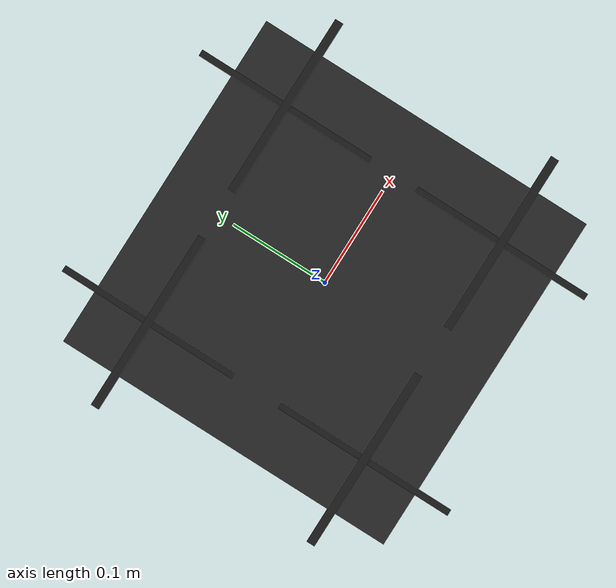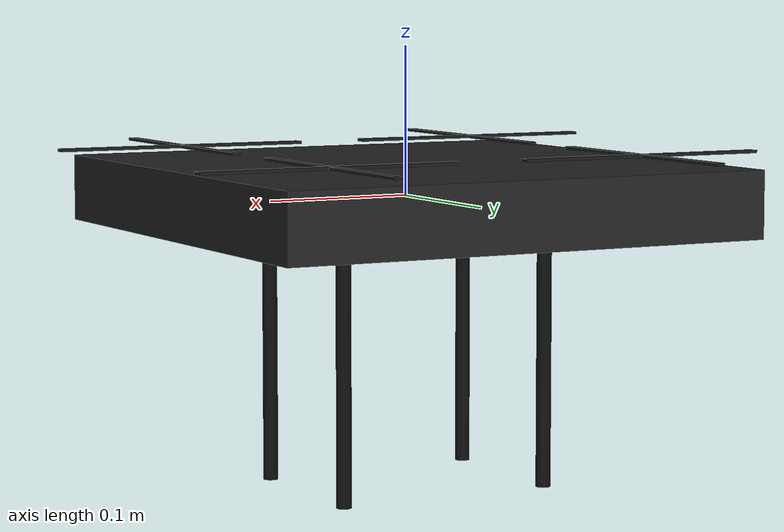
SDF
<?xml version='1.0'?>
<sdf version='1.9'>
	<model name="rescue_7inch">
  <!-- Model-level flag is required for included-model links to receive wind. -->
  <enable_wind>true</enable_wind>
  <self_collide>false</self_collide>
    <pose>0 0 0 0 0 0</pose>
    <link name='base_link'>
      <!-- Required for Gazebo WindEffects to apply physical wind force. -->
      <enable_wind>true</enable_wind>
      <velocity_decay>
        <linear>0.0</linear>
        <angular>0.0</angular>
      </velocity_decay>
      <inertial>
        <pose>0 0 0 0 0 0</pose>
        <mass>1.33</mass>
        <inertia>
          <ixx>0.020</ixx>
          <ixy>0</ixy>
          <ixz>0</ixz>
          <iyy>0.020</iyy>
          <iyz>0</iyz>
          <izz>0.035</izz>
        </inertia>
      </inertial>
<!-- Downward RGB camera -->
      <sensor name="down_camera" type="camera">
        <pose>0 0 -0.10 0 1.5708 0</pose>
        <gz_frame_id>base_link</gz_frame_id>
        <camera>
          <horizontal_fov>1.5708</horizontal_fov>
          <image>
            <width>640</width>
            <height>480</height>
            <format>RGB_INT8</format>
          </image>
          <clip>
            <near>0.05</near>
            <far>500</far>
          </clip>
        </camera>
        <always_on>1</always_on>
        <update_rate>20</update_rate>
        <visualize>false</visualize>
      </sensor>

      <collision name='base_collision'>
        <pose>0 0 0 0 0 0</pose>
        <geometry>
          <box>
            <size>0.18 0.14 0.045</size>
          </box>
        </geometry>
        <surface>
          <contact>
            <ode>
              <max_vel>100.0</max_vel>
              <min_depth>0.001</min_depth>
            </ode>
          </contact>
          <friction>
            <ode>
              <mu>1.0</mu>
              <mu2>1.0</mu2>
            </ode>
          </friction>
        </surface>
      </collision>
      <collision name='front_left_leg_collision'>
        <pose>0.075 0.055 -0.11 0 0 0</pose>
        <geometry>
          <cylinder>
            <radius>0.005</radius>
            <length>0.17</length>
          </cylinder>
        </geometry>
        <surface>
          <contact>
            <ode>
              <max_vel>100.0</max_vel>
              <min_depth>0.001</min_depth>
            </ode>
          </contact>
          <friction>
            <ode>
              <mu>100000.0</mu>
              <mu2>100000.0</mu2>
            </ode>
          </friction>
        </surface>
      </collision>
      <collision name='front_right_leg_collision'>
        <pose>0.075 -0.055 -0.11 0 0 0</pose>
        <geometry>
          <cylinder>
            <radius>0.005</radius>
            <length>0.17</length>
          </cylinder>
        </geometry>
        <surface>
          <contact>
            <ode>
              <max_vel>100.0</max_vel>
              <min_depth>0.001</min_depth>
            </ode>
          </contact>
          <friction>
            <ode>
              <mu>100000.0</mu>
              <mu2>100000.0</mu2>
            </ode>
          </friction>
        </surface>
      </collision>
      <collision name='rear_left_leg_collision'>
        <pose>-0.075 0.055 -0.11 0 0 0</pose>
        <geometry>
          <cylinder>
            <radius>0.005</radius>
            <length>0.17</length>
          </cylinder>
        </geometry>
        <surface>
          <contact>
            <ode>
              <max_vel>100.0</max_vel>
              <min_depth>0.001</min_depth>
            </ode>
          </contact>
          <friction>
            <ode>
              <mu>100000.0</mu>
              <mu2>100000.0</mu2>
            </ode>
          </friction>
        </surface>
      </collision>
      <collision name='rear_right_leg_collision'>
        <pose>-0.075 -0.055 -0.11 0 0 0</pose>
        <geometry>
          <cylinder>
            <radius>0.005</radius>
            <length>0.17</length>
          </cylinder>
        </geometry>
        <surface>
          <contact>
            <ode>
              <max_vel>100.0</max_vel>
              <min_depth>0.001</min_depth>
            </ode>
          </contact>
          <friction>
            <ode>
              <mu>100000.0</mu>
              <mu2>100000.0</mu2>
            </ode>
          </friction>
        </surface>
      </collision>

      <visual name='base_visual'>
        <pose>0 0 0 0 0 0</pose>
        <geometry>
          <box>
            <size>0.34 0.34 0.045</size>
          </box>
        </geometry>
        <material>
          <ambient>0.08 0.08 0.08 1</ambient>
          <diffuse>0.14 0.14 0.14 1</diffuse>
          <specular>0.20 0.20 0.20 1</specular>
          <pbr>
            <metal>
              <metalness>0.35</metalness>
              <roughness>0.55</roughness>
            </metal>
          </pbr>
        </material>
      </visual>
      <visual name='front_left_leg_visual'>
        <pose>0.075 0.055 -0.11 0 0 0</pose>
        <geometry>
          <cylinder>
            <radius>0.005</radius>
            <length>0.17</length>
          </cylinder>
        </geometry>
        <material>
          <ambient>0.05 0.05 0.05</ambient>
          <diffuse>0.05 0.05 0.05</diffuse>
          <specular>0.01 0.01 0.01 1.0</specular>
          <pbr>
            <metal>
              <metalness>0.5</metalness>
              <roughness>0.5</roughness>
            </metal>
          </pbr>
        </material>
      </visual>
      <visual name='front_right_leg_visual'>
        <pose>0.075 -0.055 -0.11 0 0 0</pose>
        <geometry>
          <cylinder>
            <radius>0.005</radius>
            <length>0.17</length>
          </cylinder>
        </geometry>
        <material>
          <ambient>0.05 0.05 0.05</ambient>
          <diffuse>0.05 0.05 0.05</diffuse>
          <specular>0.01 0.01 0.01 1.0</specular>
          <pbr>
            <metal>
              <metalness>0.5</metalness>
              <roughness>0.5</roughness>
            </metal>
          </pbr>
        </material>
      </visual>
      <visual name='rear_left_leg_visual'>
        <pose>-0.075 0.055 -0.11 0 0 0</pose>
        <geometry>
          <cylinder>
            <radius>0.005</radius>
            <length>0.17</length>
          </cylinder>
        </geometry>
        <material>
          <ambient>0.05 0.05 0.05</ambient>
          <diffuse>0.05 0.05 0.05</diffuse>
          <specular>0.01 0.01 0.01 1.0</specular>
          <pbr>
            <metal>
              <metalness>0.5</metalness>
              <roughness>0.5</roughness>
            </metal>
          </pbr>
        </material>
      </visual>
      <visual name='rear_right_leg_visual'>
        <pose>-0.075 -0.055 -0.11 0 0 0</pose>
        <geometry>
          <cylinder>
            <radius>0.005</radius>
            <length>0.17</length>
          </cylinder>
        </geometry>
        <material>
          <ambient>0.05 0.05 0.05</ambient>
          <diffuse>0.05 0.05 0.05</diffuse>
          <specular>0.01 0.01 0.01 1.0</specular>
          <pbr>
            <metal>
              <metalness>0.5</metalness>
              <roughness>0.5</roughness>
            </metal>
          </pbr>
        </material>
      </visual>
    </link>
    <link name='imu_link'>
      <inertial>
        <pose>0 0 0 0 0 0</pose>
        <mass>0.010</mass>
        <inertia>
          <ixx>0.00001</ixx>
          <ixy>0</ixy>
          <ixz>0</ixz>
          <iyy>0.00002</iyy>
          <iyz>0</iyz>
          <izz>0.00002</izz>
        </inertia>
      </inertial>
      <sensor name="imu_sensor" type="imu">
        <gz_frame_id>imu_link</gz_frame_id>
        <pose degrees="true">0 0 0 180 0 0</pose>
        <always_on>1</always_on>
        <update_rate>1000.0</update_rate>
      </sensor>
    </link>
    <joint name='imu_joint' type='revolute'>
      <child>imu_link</child>
      <parent>base_link</parent>
      <axis>
        <xyz>0 0 1</xyz>
        <limit>
          <lower>0</lower>
          <upper>0</upper>
          <effort>0</effort>
          <velocity>0</velocity>
        </limit>
        <dynamics>
          <damping>1.0</damping>
        </dynamics>
      </axis>
    </joint>

    <!-- Sensor-role links represent the BLITZ Mini F745 architecture.
         Their masses are included in the 1.500 kg AUW budget. -->
    <link name='gps_link'>
      <inertial>
        <mass>0.010</mass>
        <inertia><ixx>1e-6</ixx><iyy>1e-6</iyy><izz>1e-6</izz></inertia>
      </inertial>
      <sensor name='gps_sensor' type='navsat'>
        <gz_frame_id>gps_link</gz_frame_id>
        <always_on>1</always_on>
        <update_rate>10</update_rate>
      </sensor>
    </link>
    <joint name='gps_joint' type='fixed'>
      <parent>base_link</parent><child>gps_link</child>
    </joint>

    <link name='barometer_link'>
      <inertial>
        <mass>0.005</mass>
        <inertia><ixx>1e-6</ixx><iyy>1e-6</iyy><izz>1e-6</izz></inertia>
      </inertial>
      <sensor name='barometer_sensor' type='air_pressure'>
        <gz_frame_id>barometer_link</gz_frame_id>
        <always_on>1</always_on>
        <update_rate>50</update_rate>
      </sensor>
    </link>
    <joint name='barometer_joint' type='fixed'>
      <parent>base_link</parent><child>barometer_link</child>
    </joint>

    <link name='compass_link'>
      <inertial>
        <mass>0.005</mass>
        <inertia><ixx>1e-6</ixx><iyy>1e-6</iyy><izz>1e-6</izz></inertia>
      </inertial>
      <sensor name='compass_sensor' type='magnetometer'>
        <gz_frame_id>compass_link</gz_frame_id>
        <always_on>1</always_on>
        <update_rate>100</update_rate>
      </sensor>
    </link>
    <joint name='compass_joint' type='fixed'>
      <parent>base_link</parent><child>compass_link</child>
    </joint>

  <link name='rotor_0'>
    <pose>+0.113137 -0.113137 0.030 0 0 0</pose>

    <inertial>
        <pose>0 0 0 0 0 0</pose>
        <mass>0.035</mass>
        <inertia>
          <ixx>9.75e-06</ixx>
          <ixy>0</ixy>
          <ixz>0</ixz>
          <iyy>0.000166704</iyy>
          <iyz>0</iyz>
          <izz>0.000167604</izz>
        </inertia>
      </inertial>

    <visual name='propeller_visual'>
      <pose>0 0 0 0 0 0</pose>
      <geometry>
        <box>
          <size>0.1778 0.008 0.002</size>
        </box>
      </geometry>
      <material>
        <ambient>0.05 0.05 0.05 1</ambient>
        <diffuse>0.10 0.10 0.10 1</diffuse>
        <specular>0.20 0.20 0.20 1</specular>
      </material>
    </visual>

    <visual name='propeller_visual_90deg'>
      <pose>0 0 0 0 0 1.57079632679</pose>
      <geometry>
        <box>
          <size>0.1778 0.006 0.002</size>
        </box>
      </geometry>
      <material>
        <ambient>0.05 0.05 0.05 1</ambient>
        <diffuse>0.10 0.10 0.10 1</diffuse>
        <specular>0.20 0.20 0.20 1</specular>
      </material>
    </visual>

  </link>
<joint name='rotor_0_joint' type='revolute'>
      <child>rotor_0</child>
      <parent>base_link</parent>
      <axis>
        <xyz>0 0 1</xyz>
        <limit>
          <lower>-1e+16</lower>
          <upper>1e+16</upper>
        </limit>
        <dynamics>
          <damping>0.004</damping>
        </dynamics>
      </axis>
    </joint>

  <link name='rotor_1'>
    <pose>-0.113137 +0.113137 0.030 0 0 0</pose>

    <inertial>
        <pose>0 0 0 0 0 0</pose>
        <mass>0.035</mass>
        <inertia>
          <ixx>9.75e-06</ixx>
          <ixy>0</ixy>
          <ixz>0</ixz>
          <iyy>0.000166704</iyy>
          <iyz>0</iyz>
          <izz>0.000167604</izz>
        </inertia>
      </inertial>

    <visual name='propeller_visual'>
      <pose>0 0 0 0 0 0</pose>
      <geometry>
        <box>
          <size>0.1778 0.008 0.002</size>
        </box>
      </geometry>
      <material>
        <ambient>0.05 0.05 0.05 1</ambient>
        <diffuse>0.10 0.10 0.10 1</diffuse>
        <specular>0.20 0.20 0.20 1</specular>
      </material>
    </visual>

    <visual name='propeller_visual_90deg'>
      <pose>0 0 0 0 0 1.57079632679</pose>
      <geometry>
        <box>
          <size>0.1778 0.006 0.002</size>
        </box>
      </geometry>
      <material>
        <ambient>0.05 0.05 0.05 1</ambient>
        <diffuse>0.10 0.10 0.10 1</diffuse>
        <specular>0.20 0.20 0.20 1</specular>
      </material>
    </visual>

  </link>
<joint name='rotor_1_joint' type='revolute'>
      <child>rotor_1</child>
      <parent>base_link</parent>
      <axis>
        <xyz>0 0 1</xyz>
        <limit>
          <lower>-1e+16</lower>
          <upper>1e+16</upper>
        </limit>
        <dynamics>
          <damping>0.004</damping>
        </dynamics>
      </axis>
    </joint>

  <link name='rotor_2'>
    <pose>+0.113137 +0.113137 0.030 0 0 0</pose>

    <inertial>
        <pose>0 0 0 0 0 0</pose>
        <mass>0.035</mass>
        <inertia>
          <ixx>9.75e-06</ixx>
          <ixy>0</ixy>
          <ixz>0</ixz>
          <iyy>0.000166704</iyy>
          <iyz>0</iyz>
          <izz>0.000167604</izz>
        </inertia>
      </inertial>

    <visual name='propeller_visual'>
      <pose>0 0 0 0 0 0</pose>
      <geometry>
        <box>
          <size>0.1778 0.008 0.002</size>
        </box>
      </geometry>
      <material>
        <ambient>0.05 0.05 0.05 1</ambient>
        <diffuse>0.10 0.10 0.10 1</diffuse>
        <specular>0.20 0.20 0.20 1</specular>
      </material>
    </visual>

    <visual name='propeller_visual_90deg'>
      <pose>0 0 0 0 0 1.57079632679</pose>
      <geometry>
        <box>
          <size>0.1778 0.006 0.002</size>
        </box>
      </geometry>
      <material>
        <ambient>0.05 0.05 0.05 1</ambient>
        <diffuse>0.10 0.10 0.10 1</diffuse>
        <specular>0.20 0.20 0.20 1</specular>
      </material>
    </visual>

  </link>
<joint name='rotor_2_joint' type='revolute'>
      <child>rotor_2</child>
      <parent>base_link</parent>
      <axis>
        <xyz>0 0 1</xyz>
        <limit>
          <lower>-1e+16</lower>
          <upper>1e+16</upper>
        </limit>
        <dynamics>
          <damping>0.004</damping>
        </dynamics>
      </axis>
    </joint>

  <link name='rotor_3'>
    <pose>-0.113137 -0.113137 0.030 0 0 0</pose>

    <inertial>
        <pose>0 0 0 0 0 0</pose>
        <mass>0.035</mass>
        <inertia>
          <ixx>9.75e-06</ixx>
          <ixy>0</ixy>
          <ixz>0</ixz>
          <iyy>0.000166704</iyy>
          <iyz>0</iyz>
          <izz>0.000167604</izz>
        </inertia>
      </inertial>

    <visual name='propeller_visual'>
      <pose>0 0 0 0 0 0</pose>
      <geometry>
        <box>
          <size>0.1778 0.008 0.002</size>
        </box>
      </geometry>
      <material>
        <ambient>0.05 0.05 0.05 1</ambient>
        <diffuse>0.10 0.10 0.10 1</diffuse>
        <specular>0.20 0.20 0.20 1</specular>
      </material>
    </visual>

    <visual name='propeller_visual_90deg'>
      <pose>0 0 0 0 0 1.57079632679</pose>
      <geometry>
        <box>
          <size>0.1778 0.006 0.002</size>
        </box>
      </geometry>
      <material>
        <ambient>0.05 0.05 0.05 1</ambient>
        <diffuse>0.10 0.10 0.10 1</diffuse>
        <specular>0.20 0.20 0.20 1</specular>
      </material>
    </visual>

  </link>
<joint name='rotor_3_joint' type='revolute'>
      <child>rotor_3</child>
      <parent>base_link</parent>
      <axis>
        <xyz>0 0 1</xyz>
        <limit>
          <lower>-1e+16</lower>
          <upper>1e+16</upper>
        </limit>
        <dynamics>
          <damping>0.004</damping>
        </dynamics>
      </axis>
    </joint>

    <!-- First-pass 7-inch propeller aerodynamics. Coefficients are simulation
         assumptions and must be calibrated against measured thrust data. -->
    <plugin filename="gz-sim-lift-drag-system" name="gz::sim::systems::LiftDrag">
      <a0>0.3</a0><alpha_stall>1.4</alpha_stall><cla>4.25</cla><cda>0.10</cda>
      <cla_stall>-0.025</cla_stall><area>0.002</area><air_density>1.2041</air_density>
      <cp>0.084 0 0</cp><forward>0 1 0</forward><upward>0 0 1</upward><link_name>rotor_0</link_name>
    </plugin>
    <plugin filename="gz-sim-lift-drag-system" name="gz::sim::systems::LiftDrag">
      <a0>0.3</a0><alpha_stall>1.4</alpha_stall><cla>4.25</cla><cda>0.10</cda>
      <cla_stall>-0.025</cla_stall><area>0.002</area><air_density>1.2041</air_density>
      <cp>-0.084 0 0</cp><forward>0 -1 0</forward><upward>0 0 1</upward><link_name>rotor_0</link_name>
    </plugin>
    <plugin filename="gz-sim-lift-drag-system" name="gz::sim::systems::LiftDrag">
      <a0>0.3</a0><alpha_stall>1.4</alpha_stall><cla>4.25</cla><cda>0.10</cda>
      <cla_stall>-0.025</cla_stall><area>0.002</area><air_density>1.2041</air_density>
      <cp>0.084 0 0</cp><forward>0 1 0</forward><upward>0 0 1</upward><link_name>rotor_1</link_name>
    </plugin>
    <plugin filename="gz-sim-lift-drag-system" name="gz::sim::systems::LiftDrag">
      <a0>0.3</a0><alpha_stall>1.4</alpha_stall><cla>4.25</cla><cda>0.10</cda>
      <cla_stall>-0.025</cla_stall><area>0.002</area><air_density>1.2041</air_density>
      <cp>-0.084 0 0</cp><forward>0 -1 0</forward><upward>0 0 1</upward><link_name>rotor_1</link_name>
    </plugin>
    <plugin filename="gz-sim-lift-drag-system" name="gz::sim::systems::LiftDrag">
      <a0>0.3</a0><alpha_stall>1.4</alpha_stall><cla>4.25</cla><cda>0.10</cda>
      <cla_stall>-0.025</cla_stall><area>0.002</area><air_density>1.2041</air_density>
      <cp>0.084 0 0</cp><forward>0 -1 0</forward><upward>0 0 1</upward><link_name>rotor_2</link_name>
    </plugin>
    <plugin filename="gz-sim-lift-drag-system" name="gz::sim::systems::LiftDrag">
      <a0>0.3</a0><alpha_stall>1.4</alpha_stall><cla>4.25</cla><cda>0.10</cda>
      <cla_stall>-0.025</cla_stall><area>0.002</area><air_density>1.2041</air_density>
      <cp>-0.084 0 0</cp><forward>0 1 0</forward><upward>0 0 1</upward><link_name>rotor_2</link_name>
    </plugin>
    <plugin filename="gz-sim-lift-drag-system" name="gz::sim::systems::LiftDrag">
      <a0>0.3</a0><alpha_stall>1.4</alpha_stall><cla>4.25</cla><cda>0.10</cda>
      <cla_stall>-0.025</cla_stall><area>0.002</area><air_density>1.2041</air_density>
      <cp>0.084 0 0</cp><forward>0 -1 0</forward><upward>0 0 1</upward><link_name>rotor_3</link_name>
    </plugin>
    <plugin filename="gz-sim-lift-drag-system" name="gz::sim::systems::LiftDrag">
      <a0>0.3</a0><alpha_stall>1.4</alpha_stall><cla>4.25</cla><cda>0.10</cda>
      <cla_stall>-0.025</cla_stall><area>0.002</area><air_density>1.2041</air_density>
      <cp>-0.084 0 0</cp><forward>0 1 0</forward><upward>0 0 1</upward><link_name>rotor_3</link_name>
    </plugin>
    <plugin filename="gz-sim-apply-joint-force-system" name="gz::sim::systems::ApplyJointForce"><joint_name>rotor_0_joint</joint_name></plugin>
    <plugin filename="gz-sim-apply-joint-force-system" name="gz::sim::systems::ApplyJointForce"><joint_name>rotor_1_joint</joint_name></plugin>
    <plugin filename="gz-sim-apply-joint-force-system" name="gz::sim::systems::ApplyJointForce"><joint_name>rotor_2_joint</joint_name></plugin>
    <plugin filename="gz-sim-apply-joint-force-system" name="gz::sim::systems::ApplyJointForce"><joint_name>rotor_3_joint</joint_name></plugin>

    <plugin name="ArduPilotPlugin"
      filename="ArduPilotPlugin">

      <fdm_addr>127.0.0.1</fdm_addr>
      <fdm_port_in>9003</fdm_port_in>

      <connectionTimeoutMaxCount>5</connectionTimeoutMaxCount>
      <lock_step>1</lock_step>
      <no_time_sync>1</no_time_sync>
      <have_32_channels>0</have_32_channels>

      <modelXYZToAirplaneXForwardZDown degrees="true">0 0 0 180 0 0</modelXYZToAirplaneXForwardZDown>
      <gazeboXYZToNED degrees="true">0 0 0 180 0 90</gazeboXYZToNED>

      <imuName>imu_sensor</imuName>

      <control channel="0">
        <jointName>rotor_0_joint</jointName>
        <useForce>1</useForce>
        <multiplier>838</multiplier>
        <offset>0</offset>
        <servo_min>1100</servo_min>
        <servo_max>1900</servo_max>
        <type>VELOCITY</type>
        <p_gain>0.20</p_gain>
        <i_gain>0</i_gain>
        <d_gain>0</d_gain>
        <i_max>0</i_max>
        <i_min>0</i_min>
        <cmd_max>2.5</cmd_max>
        <cmd_min>-2.5</cmd_min>
        <controlVelocitySlowdownSim>1</controlVelocitySlowdownSim>
      </control>

      <control channel="1">
        <jointName>rotor_1_joint</jointName>
        <useForce>1</useForce>
        <multiplier>838</multiplier>
        <offset>0</offset>
        <servo_min>1100</servo_min>
        <servo_max>1900</servo_max>
        <type>VELOCITY</type>
        <p_gain>0.20</p_gain>
        <i_gain>0</i_gain>
        <d_gain>0</d_gain>
        <i_max>0</i_max>
        <i_min>0</i_min>
        <cmd_max>2.5</cmd_max>
        <cmd_min>-2.5</cmd_min>
        <controlVelocitySlowdownSim>1</controlVelocitySlowdownSim>
      </control>

      <control channel="2">
        <jointName>rotor_2_joint</jointName>
        <useForce>1</useForce>
        <multiplier>-838</multiplier>
        <offset>0</offset>
        <servo_min>1100</servo_min>
        <servo_max>1900</servo_max>
        <type>VELOCITY</type>
        <p_gain>0.20</p_gain>
        <i_gain>0</i_gain>
        <d_gain>0</d_gain>
        <i_max>0</i_max>
        <i_min>0</i_min>
        <cmd_max>2.5</cmd_max>
        <cmd_min>-2.5</cmd_min>
        <controlVelocitySlowdownSim>1</controlVelocitySlowdownSim>
      </control>

      <control channel="3">
        <jointName>rotor_3_joint</jointName>
        <useForce>1</useForce>
        <multiplier>-838</multiplier>
        <offset>0</offset>
        <servo_min>1100</servo_min>
        <servo_max>1900</servo_max>
        <type>VELOCITY</type>
        <p_gain>0.20</p_gain>
        <i_gain>0</i_gain>
        <d_gain>0</d_gain>
        <i_max>0</i_max>
        <i_min>0</i_min>
        <cmd_max>2.5</cmd_max>
        <cmd_min>-2.5</cmd_min>
        <controlVelocitySlowdownSim>1</controlVelocitySlowdownSim>
      </control>

    </plugin>

  </model>
</sdf>
